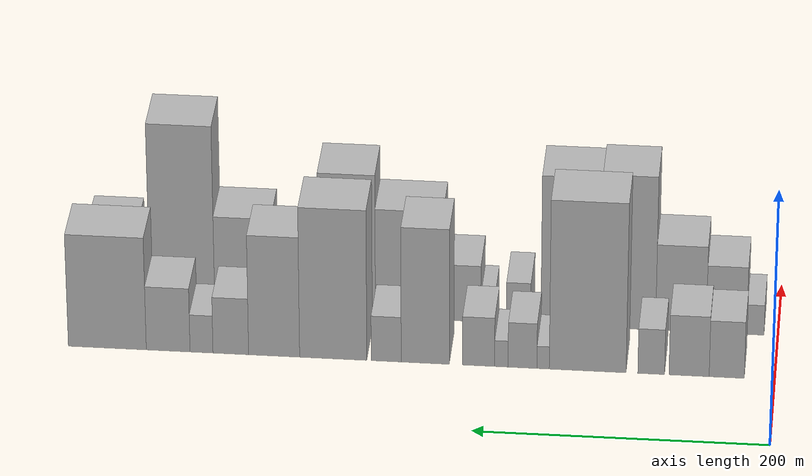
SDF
<sdf version="1.6">
 <world name="default">
  <model name="building_13">
   <static>1</static>
   <pose>100.0000 32.6916 0 0.000000 0.000000 0.000000</pose>
   <link name="link">
    <pose>0 0 22.50 0 0 0</pose>
    <collision name="collision"><geometry><box><size>40.0000 23.8807 45.0000</size></box></geometry></collision>
    <visual name="visual">
     <cast_shadows>0</cast_shadows>
     <geometry><box><size>40.0000 23.8807 45.0000</size></box></geometry>
     <material>
      <script>
       <uri>model://HANNAS_wall/materials/scripts</uri>
       <uri>model://HANNAS_wall/materials/textures</uri>
       <name>vrc/HANNAS_wall</name>
      </script>
     </material>
    </visual>
   </link>
  </model>
  <model name="building_14">
   <static>1</static>
   <pose>100.0000 58.2727 0 0.000000 0.000000 0.000000</pose>
   <link name="link">
    <pose>0 0 24.00 0 0 0</pose>
    <collision name="collision"><geometry><box><size>40.0000 27.2813 48.0000</size></box></geometry></collision>
    <visual name="visual">
     <cast_shadows>0</cast_shadows>
     <geometry><box><size>40.0000 27.2813 48.0000</size></box></geometry>
     <material>
      <script>
       <uri>model://HANNAS_wall/materials/scripts</uri>
       <uri>model://HANNAS_wall/materials/textures</uri>
       <name>vrc/HANNAS_wall</name>
      </script>
     </material>
    </visual>
   </link>
  </model>
  <model name="building_15">
   <static>1</static>
   <pose>100.0000 84.0042 0 0.000000 0.000000 0.000000</pose>
   <link name="link">
    <pose>0 0 18.00 0 0 0</pose>
    <collision name="collision"><geometry><box><size>40.0000 18.1818 36.0000</size></box></geometry></collision>
    <visual name="visual">
     <cast_shadows>0</cast_shadows>
     <geometry><box><size>40.0000 18.1818 36.0000</size></box></geometry>
     <material>
      <script>
       <uri>model://HANNAS_wall/materials/scripts</uri>
       <uri>model://HANNAS_wall/materials/textures</uri>
       <name>vrc/HANNAS_wall</name>
      </script>
     </material>
    </visual>
   </link>
  </model>
  <model name="building_16">
   <static>1</static>
   <pose>100.0000 127.2694 0 0.000000 0.000000 0.000000</pose>
   <link name="link">
    <pose>0 0 67.50 0 0 0</pose>
    <collision name="collision"><geometry><box><size>40.0000 52.3485 135.0000</size></box></geometry></collision>
    <visual name="visual">
     <cast_shadows>0</cast_shadows>
     <geometry><box><size>40.0000 52.3485 135.0000</size></box></geometry>
     <material>
      <script>
       <uri>model://HANNAS_wall/materials/scripts</uri>
       <uri>model://HANNAS_wall/materials/textures</uri>
       <name>vrc/HANNAS_wall</name>
      </script>
     </material>
    </visual>
   </link>
  </model>
  <model name="building_17">
   <static>1</static>
   <pose>100.0000 157.6411 0 0.000000 0.000000 0.000000</pose>
   <link name="link">
    <pose>0 0 9.00 0 0 0</pose>
    <collision name="collision"><geometry><box><size>40.0000 8.3950 18.0000</size></box></geometry></collision>
    <visual name="visual">
     <cast_shadows>0</cast_shadows>
     <geometry><box><size>40.0000 8.3950 18.0000</size></box></geometry>
     <material>
      <script>
       <uri>model://HANNAS_wall/materials/scripts</uri>
       <uri>model://HANNAS_wall/materials/textures</uri>
       <name>vrc/HANNAS_wall</name>
      </script>
     </material>
    </visual>
   </link>
  </model>
  <model name="building_18">
   <static>1</static>
   <pose>100.0000 171.6887 0 0.000000 0.000000 0.000000</pose>
   <link name="link">
    <pose>0 0 18.00 0 0 0</pose>
    <collision name="collision"><geometry><box><size>40.0000 19.7000 36.0000</size></box></geometry></collision>
    <visual name="visual">
     <cast_shadows>0</cast_shadows>
     <geometry><box><size>40.0000 19.7000 36.0000</size></box></geometry>
     <material>
      <script>
       <uri>model://HANNAS_wall/materials/scripts</uri>
       <uri>model://HANNAS_wall/materials/textures</uri>
       <name>vrc/HANNAS_wall</name>
      </script>
     </material>
    </visual>
   </link>
  </model>
  <model name="building_19">
   <static>1</static>
   <pose>100.0000 186.1361 0 0.000000 0.000000 0.000000</pose>
   <link name="link">
    <pose>0 0 10.50 0 0 0</pose>
    <collision name="collision"><geometry><box><size>40.0000 9.1949 21.0000</size></box></geometry></collision>
    <visual name="visual">
     <cast_shadows>0</cast_shadows>
     <geometry><box><size>40.0000 9.1949 21.0000</size></box></geometry>
     <material>
      <script>
       <uri>model://HANNAS_wall/materials/scripts</uri>
       <uri>model://HANNAS_wall/materials/textures</uri>
       <name>vrc/HANNAS_wall</name>
      </script>
     </material>
    </visual>
   </link>
  </model>
  <model name="building_20">
   <static>1</static>
   <pose>100.0000 201.6936 0 0.000000 0.000000 0.000000</pose>
   <link name="link">
    <pose>0 0 19.50 0 0 0</pose>
    <collision name="collision"><geometry><box><size>40.0000 21.9200 39.0000</size></box></geometry></collision>
    <visual name="visual">
     <cast_shadows>0</cast_shadows>
     <geometry><box><size>40.0000 21.9200 39.0000</size></box></geometry>
     <material>
      <script>
       <uri>model://HANNAS_wall/materials/scripts</uri>
       <uri>model://HANNAS_wall/materials/textures</uri>
       <name>vrc/HANNAS_wall</name>
      </script>
     </material>
    </visual>
   </link>
  </model>
  <model name="building_21">
   <static>1</static>
   <pose>100.0000 238.1112 0 0.000000 0.000000 0.000000</pose>
   <link name="link">
    <pose>0 0 54.00 0 0 0</pose>
    <collision name="collision"><geometry><box><size>40.0000 32.9152 108.0000</size></box></geometry></collision>
    <visual name="visual">
     <cast_shadows>0</cast_shadows>
     <geometry><box><size>40.0000 32.9152 108.0000</size></box></geometry>
     <material>
      <script>
       <uri>model://HANNAS_wall/materials/scripts</uri>
       <uri>model://HANNAS_wall/materials/textures</uri>
       <name>vrc/HANNAS_wall</name>
      </script>
     </material>
    </visual>
   </link>
  </model>
  <model name="building_22">
   <static>1</static>
   <pose>100.0000 264.8213 0 0.000000 0.000000 0.000000</pose>
   <link name="link">
    <pose>0 0 18.00 0 0 0</pose>
    <collision name="collision"><geometry><box><size>40.0000 20.5051 36.0000</size></box></geometry></collision>
    <visual name="visual">
     <cast_shadows>0</cast_shadows>
     <geometry><box><size>40.0000 20.5051 36.0000</size></box></geometry>
     <material>
      <script>
       <uri>model://HANNAS_wall/materials/scripts</uri>
       <uri>model://HANNAS_wall/materials/textures</uri>
       <name>vrc/HANNAS_wall</name>
      </script>
     </material>
    </visual>
   </link>
  </model>
  <model name="building_23">
   <static>1</static>
   <pose>100.0000 301.1008 0 0.000000 0.000000 0.000000</pose>
   <link name="link">
    <pose>0 0 60.00 0 0 0</pose>
    <collision name="collision"><geometry><box><size>40.0000 46.0538 120.0000</size></box></geometry></collision>
    <visual name="visual">
     <cast_shadows>0</cast_shadows>
     <geometry><box><size>40.0000 46.0538 120.0000</size></box></geometry>
     <material>
      <script>
       <uri>model://HANNAS_wall/materials/scripts</uri>
       <uri>model://HANNAS_wall/materials/textures</uri>
       <name>vrc/HANNAS_wall</name>
      </script>
     </material>
    </visual>
   </link>
  </model>
  <model name="building_24">
   <static>1</static>
   <pose>100.0000 341.6307 0 0.000000 0.000000 0.000000</pose>
   <link name="link">
    <pose>0 0 48.00 0 0 0</pose>
    <collision name="collision"><geometry><box><size>40.0000 35.0061 96.0000</size></box></geometry></collision>
    <visual name="visual">
     <cast_shadows>0</cast_shadows>
     <geometry><box><size>40.0000 35.0061 96.0000</size></box></geometry>
     <material>
      <script>
       <uri>model://HANNAS_wall/materials/scripts</uri>
       <uri>model://HANNAS_wall/materials/textures</uri>
       <name>vrc/HANNAS_wall</name>
      </script>
     </material>
    </visual>
   </link>
  </model>
  <model name="building_25">
   <static>1</static>
   <pose>100.0000 371.3694 0 0.000000 0.000000 0.000000</pose>
   <link name="link">
    <pose>0 0 22.50 0 0 0</pose>
    <collision name="collision"><geometry><box><size>40.0000 24.4712 45.0000</size></box></geometry></collision>
    <visual name="visual">
     <cast_shadows>0</cast_shadows>
     <geometry><box><size>40.0000 24.4712 45.0000</size></box></geometry>
     <material>
      <script>
       <uri>model://HANNAS_wall/materials/scripts</uri>
       <uri>model://HANNAS_wall/materials/textures</uri>
       <name>vrc/HANNAS_wall</name>
      </script>
     </material>
    </visual>
   </link>
  </model>
  <model name="building_26">
   <static>1</static>
   <pose>100.0000 391.4854 0 0.000000 0.000000 0.000000</pose>
   <link name="link">
    <pose>0 0 15.00 0 0 0</pose>
    <collision name="collision"><geometry><box><size>40.0000 15.7609 30.0000</size></box></geometry></collision>
    <visual name="visual">
     <cast_shadows>0</cast_shadows>
     <geometry><box><size>40.0000 15.7609 30.0000</size></box></geometry>
     <material>
      <script>
       <uri>model://HANNAS_wall/materials/scripts</uri>
       <uri>model://HANNAS_wall/materials/textures</uri>
       <name>vrc/HANNAS_wall</name>
      </script>
     </material>
    </visual>
   </link>
  </model>
  <model name="building_27">
   <static>1</static>
   <pose>100.0000 414.4124 0 0.000000 0.000000 0.000000</pose>
   <link name="link">
    <pose>0 0 25.50 0 0 0</pose>
    <collision name="collision"><geometry><box><size>40.0000 30.0930 51.0000</size></box></geometry></collision>
    <visual name="visual">
     <cast_shadows>0</cast_shadows>
     <geometry><box><size>40.0000 30.0930 51.0000</size></box></geometry>
     <material>
      <script>
       <uri>model://HANNAS_wall/materials/scripts</uri>
       <uri>model://HANNAS_wall/materials/textures</uri>
       <name>vrc/HANNAS_wall</name>
      </script>
     </material>
    </visual>
   </link>
  </model>
  <model name="building_28">
   <static>1</static>
   <pose>100.0000 456.2882 0 0.000000 0.000000 0.000000</pose>
   <link name="link">
    <pose>0 0 45.00 0 0 0</pose>
    <collision name="collision"><geometry><box><size>40.0000 53.6588 90.0000</size></box></geometry></collision>
    <visual name="visual">
     <cast_shadows>0</cast_shadows>
     <geometry><box><size>40.0000 53.6588 90.0000</size></box></geometry>
     <material>
      <script>
       <uri>model://HANNAS_wall/materials/scripts</uri>
       <uri>model://HANNAS_wall/materials/textures</uri>
       <name>vrc/HANNAS_wall</name>
      </script>
     </material>
    </visual>
   </link>
  </model>
  <model name="building_44">
   <static>1</static>
   <pose>155.0000 15.5941 0 0.000000 0.000000 0.000000</pose>
   <link name="link">
    <pose>0 0 12.00 0 0 0</pose>
    <collision name="collision"><geometry><box><size>40.0000 11.9204 24.0000</size></box></geometry></collision>
    <visual name="visual">
     <cast_shadows>0</cast_shadows>
     <geometry><box><size>40.0000 11.9204 24.0000</size></box></geometry>
     <material>
      <script>
       <uri>model://HANNAS_wall/materials/scripts</uri>
       <uri>model://HANNAS_wall/materials/textures</uri>
       <name>vrc/HANNAS_wall</name>
      </script>
     </material>
    </visual>
   </link>
  </model>
  <model name="building_45">
   <static>1</static>
   <pose>155.0000 35.4498 0 0.000000 0.000000 0.000000</pose>
   <link name="link">
    <pose>0 0 27.00 0 0 0</pose>
    <collision name="collision"><geometry><box><size>40.0000 27.7910 54.0000</size></box></geometry></collision>
    <visual name="visual">
     <cast_shadows>0</cast_shadows>
     <geometry><box><size>40.0000 27.7910 54.0000</size></box></geometry>
     <material>
      <script>
       <uri>model://HANNAS_wall/materials/scripts</uri>
       <uri>model://HANNAS_wall/materials/textures</uri>
       <name>vrc/HANNAS_wall</name>
      </script>
     </material>
    </visual>
   </link>
  </model>
  <model name="building_46">
   <static>1</static>
   <pose>155.0000 66.7487 0 0.000000 0.000000 0.000000</pose>
   <link name="link">
    <pose>0 0 34.50 0 0 0</pose>
    <collision name="collision"><geometry><box><size>40.0000 34.8068 69.0000</size></box></geometry></collision>
    <visual name="visual">
     <cast_shadows>0</cast_shadows>
     <geometry><box><size>40.0000 34.8068 69.0000</size></box></geometry>
     <material>
      <script>
       <uri>model://HANNAS_wall/materials/scripts</uri>
       <uri>model://HANNAS_wall/materials/textures</uri>
       <name>vrc/HANNAS_wall</name>
      </script>
     </material>
    </visual>
   </link>
  </model>
  <model name="building_47">
   <static>1</static>
   <pose>155.0000 103.0317 0 0.000000 0.000000 0.000000</pose>
   <link name="link">
    <pose>0 0 61.50 0 0 0</pose>
    <collision name="collision"><geometry><box><size>40.0000 37.7592 123.0000</size></box></geometry></collision>
    <visual name="visual">
     <cast_shadows>0</cast_shadows>
     <geometry><box><size>40.0000 37.7592 123.0000</size></box></geometry>
     <material>
      <script>
       <uri>model://HANNAS_wall/materials/scripts</uri>
       <uri>model://HANNAS_wall/materials/textures</uri>
       <name>vrc/HANNAS_wall</name>
      </script>
     </material>
    </visual>
   </link>
  </model>
  <model name="building_48">
   <static>1</static>
   <pose>155.0000 142.5143 0 0.000000 0.000000 0.000000</pose>
   <link name="link">
    <pose>0 0 60.00 0 0 0</pose>
    <collision name="collision"><geometry><box><size>40.0000 41.2062 120.0000</size></box></geometry></collision>
    <visual name="visual">
     <cast_shadows>0</cast_shadows>
     <geometry><box><size>40.0000 41.2062 120.0000</size></box></geometry>
     <material>
      <script>
       <uri>model://HANNAS_wall/materials/scripts</uri>
       <uri>model://HANNAS_wall/materials/textures</uri>
       <name>vrc/HANNAS_wall</name>
      </script>
     </material>
    </visual>
   </link>
  </model>
  <model name="building_49">
   <static>1</static>
   <pose>155.0000 178.5070 0 0.000000 0.000000 0.000000</pose>
   <link name="link">
    <pose>0 0 16.50 0 0 0</pose>
    <collision name="collision"><geometry><box><size>40.0000 16.7791 33.0000</size></box></geometry></collision>
    <visual name="visual">
     <cast_shadows>0</cast_shadows>
     <geometry><box><size>40.0000 16.7791 33.0000</size></box></geometry>
     <material>
      <script>
       <uri>model://HANNAS_wall/materials/scripts</uri>
       <uri>model://HANNAS_wall/materials/textures</uri>
       <name>vrc/HANNAS_wall</name>
      </script>
     </material>
    </visual>
   </link>
  </model>
  <model name="building_50">
   <static>1</static>
   <pose>155.0000 199.7642 0 0.000000 0.000000 0.000000</pose>
   <link name="link">
    <pose>0 0 10.50 0 0 0</pose>
    <collision name="collision"><geometry><box><size>40.0000 9.7354 21.0000</size></box></geometry></collision>
    <visual name="visual">
     <cast_shadows>0</cast_shadows>
     <geometry><box><size>40.0000 9.7354 21.0000</size></box></geometry>
     <material>
      <script>
       <uri>model://HANNAS_wall/materials/scripts</uri>
       <uri>model://HANNAS_wall/materials/textures</uri>
       <name>vrc/HANNAS_wall</name>
      </script>
     </material>
    </visual>
   </link>
  </model>
  <model name="building_51">
   <static>1</static>
   <pose>155.0000 217.6769 0 0.000000 0.000000 0.000000</pose>
   <link name="link">
    <pose>0 0 22.50 0 0 0</pose>
    <collision name="collision"><geometry><box><size>40.0000 26.0900 45.0000</size></box></geometry></collision>
    <visual name="visual">
     <cast_shadows>0</cast_shadows>
     <geometry><box><size>40.0000 26.0900 45.0000</size></box></geometry>
     <material>
      <script>
       <uri>model://HANNAS_wall/materials/scripts</uri>
       <uri>model://HANNAS_wall/materials/textures</uri>
       <name>vrc/HANNAS_wall</name>
      </script>
     </material>
    </visual>
   </link>
  </model>
  <model name="building_52">
   <static>1</static>
   <pose>155.0000 254.0506 0 0.000000 0.000000 0.000000</pose>
   <link name="link">
    <pose>0 0 43.50 0 0 0</pose>
    <collision name="collision"><geometry><box><size>40.0000 46.6574 87.0000</size></box></geometry></collision>
    <visual name="visual">
     <cast_shadows>0</cast_shadows>
     <geometry><box><size>40.0000 46.6574 87.0000</size></box></geometry>
     <material>
      <script>
       <uri>model://HANNAS_wall/materials/scripts</uri>
       <uri>model://HANNAS_wall/materials/textures</uri>
       <name>vrc/HANNAS_wall</name>
      </script>
     </material>
    </visual>
   </link>
  </model>
  <model name="building_53">
   <static>1</static>
   <pose>155.0000 297.0819 0 0.000000 0.000000 0.000000</pose>
   <link name="link">
    <pose>0 0 57.00 0 0 0</pose>
    <collision name="collision"><geometry><box><size>40.0000 39.4052 114.0000</size></box></geometry></collision>
    <visual name="visual">
     <cast_shadows>0</cast_shadows>
     <geometry><box><size>40.0000 39.4052 114.0000</size></box></geometry>
     <material>
      <script>
       <uri>model://HANNAS_wall/materials/scripts</uri>
       <uri>model://HANNAS_wall/materials/textures</uri>
       <name>vrc/HANNAS_wall</name>
      </script>
     </material>
    </visual>
   </link>
  </model>
  <model name="building_54">
   <static>1</static>
   <pose>155.0000 328.4498 0 0.000000 0.000000 0.000000</pose>
   <link name="link">
    <pose>0 0 19.50 0 0 0</pose>
    <collision name="collision"><geometry><box><size>40.0000 23.3307 39.0000</size></box></geometry></collision>
    <visual name="visual">
     <cast_shadows>0</cast_shadows>
     <geometry><box><size>40.0000 23.3307 39.0000</size></box></geometry>
     <material>
      <script>
       <uri>model://HANNAS_wall/materials/scripts</uri>
       <uri>model://HANNAS_wall/materials/textures</uri>
       <name>vrc/HANNAS_wall</name>
      </script>
     </material>
    </visual>
   </link>
  </model>
  <model name="building_55">
   <static>1</static>
   <pose>155.0000 368.9070 0 0.000000 0.000000 0.000000</pose>
   <link name="link">
    <pose>0 0 37.50 0 0 0</pose>
    <collision name="collision"><geometry><box><size>40.0000 39.5836 75.0000</size></box></geometry></collision>
    <visual name="visual">
     <cast_shadows>0</cast_shadows>
     <geometry><box><size>40.0000 39.5836 75.0000</size></box></geometry>
     <material>
      <script>
       <uri>model://HANNAS_wall/materials/scripts</uri>
       <uri>model://HANNAS_wall/materials/textures</uri>
       <name>vrc/HANNAS_wall</name>
      </script>
     </material>
    </visual>
   </link>
  </model>
  <model name="building_56">
   <static>1</static>
   <pose>155.0000 411.1169 0 0.000000 0.000000 0.000000</pose>
   <link name="link">
    <pose>0 0 73.50 0 0 0</pose>
    <collision name="collision"><geometry><box><size>40.0000 44.8362 147.0000</size></box></geometry></collision>
    <visual name="visual">
     <cast_shadows>0</cast_shadows>
     <geometry><box><size>40.0000 44.8362 147.0000</size></box></geometry>
     <material>
      <script>
       <uri>model://HANNAS_wall/materials/scripts</uri>
       <uri>model://HANNAS_wall/materials/textures</uri>
       <name>vrc/HANNAS_wall</name>
      </script>
     </material>
    </visual>
   </link>
  </model>
  <model name="building_57">
   <static>1</static>
   <pose>155.0000 458.7799 0 0.000000 0.000000 0.000000</pose>
   <link name="link">
    <pose>0 0 31.50 0 0 0</pose>
    <collision name="collision"><geometry><box><size>40.0000 34.4898 63.0000</size></box></geometry></collision>
    <visual name="visual">
     <cast_shadows>0</cast_shadows>
     <geometry><box><size>40.0000 34.4898 63.0000</size></box></geometry>
     <material>
      <script>
       <uri>model://HANNAS_wall/materials/scripts</uri>
       <uri>model://HANNAS_wall/materials/textures</uri>
       <name>vrc/HANNAS_wall</name>
      </script>
     </material>
    </visual>
   </link>
  </model>
 </world>
</sdf>
